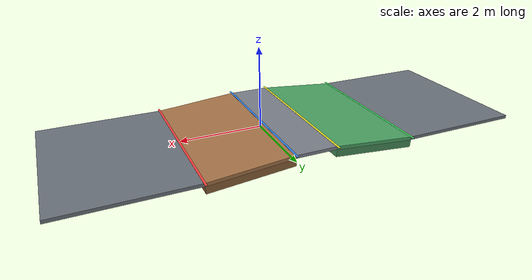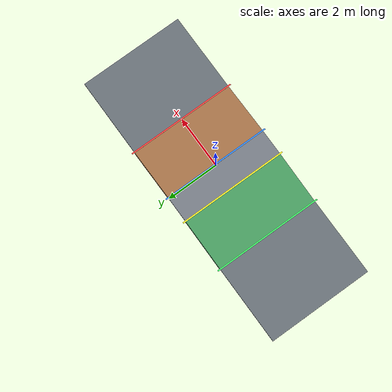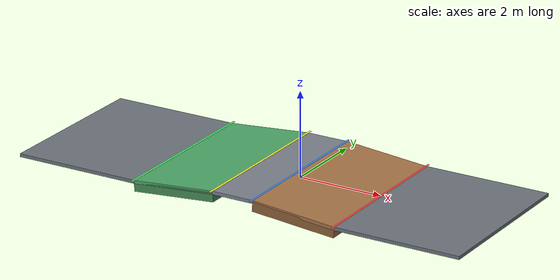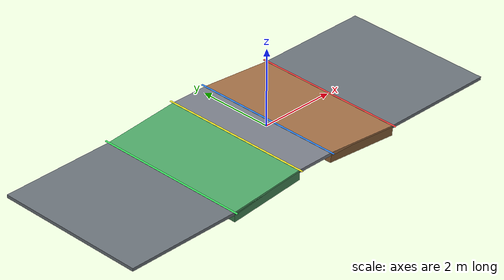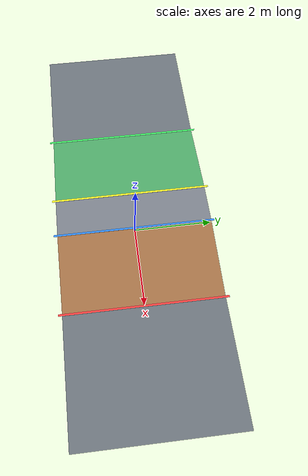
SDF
<?xml version="1.0" ?>
<!-- AUTO-GENERATED by scripts/generate_dual_slope_worlds.py -->
<sdf version="1.6">
  <world name="gentle_slope">
    <physics type="ode">
      <max_step_size>0.001</max_step_size>
      <real_time_factor>1.0</real_time_factor>
      <real_time_update_rate>1000</real_time_update_rate>
    </physics>

    <include>
      <uri>model://sun</uri>
    </include>

    <model name="gentle_slope_track">
      <static>true</static>
      <pose>0 0 0 0 0 0</pose>
      <link name="track_link">
        <inertial>
          <mass>500</mass>
          <inertia>
            <ixx>500</ixx><ixy>0</ixy><ixz>0</ixz>
            <iyy>500</iyy><iyz>0</iyz><izz>500</izz>
          </inertia>
        </inertial>

        <collision name="flat_approach_col">
          <pose>-4.5050 0.0000 -0.0400 0.0000 0.000000 0.0000</pose>
          <geometry><box><size>3.0100 4.0 0.08</size></box></geometry>
          <surface>
            <friction><ode><mu>1.0</mu><mu2>1.0</mu2></ode></friction>
            <contact><ode><kp>1e6</kp><kd>100</kd><min_depth>0.001</min_depth></ode></contact>
          </surface>
        </collision>
        <visual name="flat_approach_vis">
          <pose>-4.5050 0.0000 -0.0400 0.0000 0.000000 0.0000</pose>
          <geometry><box><size>3.0100 4.0 0.08</size></box></geometry>
          <material><ambient>0.32 0.35 0.38 1</ambient><diffuse>0.42 0.45 0.48 1</diffuse></material>
        </visual>

        <collision name="ramp_up_col">
          <pose>-1.9904 0.0000 0.0476 0.0000 -0.087266 0.0000</pose>
          <geometry><box><size>2.0200 4.0 0.08</size></box></geometry>
          <surface>
            <friction><ode><mu>1.0</mu><mu2>1.0</mu2></ode></friction>
            <contact><ode><kp>1e6</kp><kd>100</kd><min_depth>0.001</min_depth></ode></contact>
          </surface>
        </collision>
        <visual name="ramp_up_surface_vis">
          <pose>-1.9904 0.0000 0.0476 0.0000 -0.087266 0.0000</pose>
          <geometry><box><size>2.0200 4.0 0.08</size></box></geometry>
          <material><ambient>0.25 0.55 0.35 1</ambient><diffuse>0.30 0.65 0.40 1</diffuse></material>
        </visual>
        <visual name="ramp_up_fill_vis">
          <pose>-1.9904 0.0000 -0.0624 0.0000 -0.087266 0.0000</pose>
          <geometry><box><size>2.0200 4.0 0.22</size></box></geometry>
          <material><ambient>0.22 0.48 0.30 1</ambient><diffuse>0.28 0.55 0.35 1</diffuse></material>
        </visual>

        <collision name="summit_col">
          <pose>-0.4877 0.0000 0.1350 0.0000 0.000000 0.0000</pose>
          <geometry><box><size>1.0200 4.0 0.08</size></box></geometry>
          <surface>
            <friction><ode><mu>1.0</mu><mu2>1.0</mu2></ode></friction>
            <contact><ode><kp>1e6</kp><kd>100</kd><min_depth>0.001</min_depth></ode></contact>
          </surface>
        </collision>
        <visual name="summit_vis">
          <pose>-0.4877 0.0000 0.1350 0.0000 0.000000 0.0000</pose>
          <geometry><box><size>1.0200 4.0 0.08</size></box></geometry>
          <material><ambient>0.38 0.40 0.44 1</ambient><diffuse>0.48 0.50 0.54 1</diffuse></material>
        </visual>

        <collision name="ramp_down_col">
          <pose>1.0150 0.0000 0.0476 0.0000 0.087266 0.0000</pose>
          <geometry><box><size>2.0200 4.0 0.08</size></box></geometry>
          <surface>
            <friction><ode><mu>1.0</mu><mu2>1.0</mu2></ode></friction>
            <contact><ode><kp>1e6</kp><kd>100</kd><min_depth>0.001</min_depth></ode></contact>
          </surface>
        </collision>
        <visual name="ramp_down_surface_vis">
          <pose>1.0150 0.0000 0.0476 0.0000 0.087266 0.0000</pose>
          <geometry><box><size>2.0200 4.0 0.08</size></box></geometry>
          <material><ambient>0.55 0.38 0.22 1</ambient><diffuse>0.65 0.45 0.28 1</diffuse></material>
        </visual>
        <visual name="ramp_down_fill_vis">
          <pose>1.0150 0.0000 -0.0624 0.0000 0.087266 0.0000</pose>
          <geometry><box><size>2.0200 4.0 0.22</size></box></geometry>
          <material><ambient>0.48 0.32 0.18 1</ambient><diffuse>0.55 0.38 0.22 1</diffuse></material>
        </visual>

        <collision name="flat_exit_col">
          <pose>3.5196 0.0000 -0.0400 0.0000 0.000000 0.0000</pose>
          <geometry><box><size>3.0100 4.0 0.08</size></box></geometry>
          <surface>
            <friction><ode><mu>1.0</mu><mu2>1.0</mu2></ode></friction>
            <contact><ode><kp>1e6</kp><kd>100</kd><min_depth>0.001</min_depth></ode></contact>
          </surface>
        </collision>
        <visual name="flat_exit_vis">
          <pose>3.5196 0.0000 -0.0400 0.0000 0.000000 0.0000</pose>
          <geometry><box><size>3.0100 4.0 0.08</size></box></geometry>
          <material><ambient>0.32 0.35 0.38 1</ambient><diffuse>0.42 0.45 0.48 1</diffuse></material>
        </visual>

        <visual name="mark_uphill_start">
          <pose>-3.0000 0.0000 0.0020 0.0000 0.000000 0.0000</pose>
          <geometry><box><size>0.05 4.2 0.004</size></box></geometry>
          <material><ambient>0.2 0.85 0.35 1</ambient><diffuse>0.25 0.95 0.40 1</diffuse></material>
        </visual>
        <visual name="mark_summit">
          <pose>-0.9927 0.0000 0.1790 0.0000 0.000000 0.0000</pose>
          <geometry><box><size>0.05 4.2 0.004</size></box></geometry>
          <material><ambient>1.0 0.85 0.1 1</ambient><diffuse>1.0 0.95 0.15 1</diffuse></material>
        </visual>
        <visual name="mark_downhill_start">
          <pose>0.0123 0.0000 0.1790 0.0000 0.000000 0.0000</pose>
          <geometry><box><size>0.05 4.2 0.004</size></box></geometry>
          <material><ambient>0.15 0.45 0.95 1</ambient><diffuse>0.20 0.55 1.0 1</diffuse></material>
        </visual>
        <visual name="mark_downhill_end">
          <pose>2.0246 0.0000 0.0020 0.0000 0.000000 0.0000</pose>
          <geometry><box><size>0.05 4.2 0.004</size></box></geometry>
          <material><ambient>0.95 0.2 0.2 1</ambient><diffuse>1.0 0.25 0.25 1</diffuse></material>
        </visual>
      </link>
    </model>

    <gui fullscreen="0">
      <camera name="user_camera">
        <pose>-2.5 -3.5 1.4 0 0.3 1.2</pose>
      </camera>
    </gui>
  </world>
</sdf>
